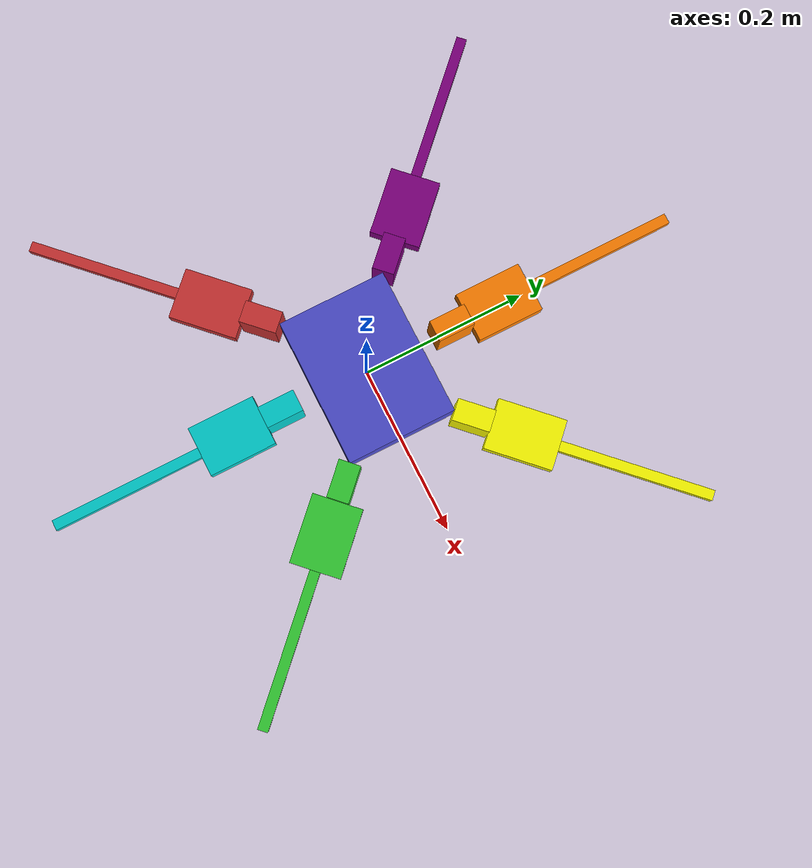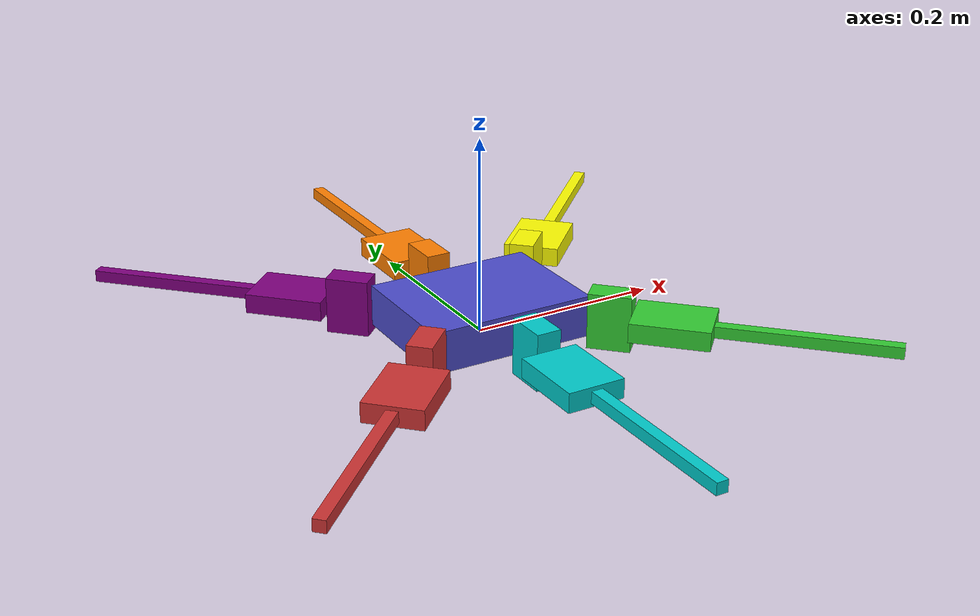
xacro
<?xml version="1.0"?>
<robot name="my_robot" xmlns:xacro="http://www.ros.org/wiki/xacro">

    <!-- Physical properties of the hexapod -->
    <xacro:include filename="my_robot_physical_properties.xacro" />

    <!-- Common properties (colors, inertia macros, etc.) -->
    <xacro:include filename="common_properties.xacro" />

    <!-- Robot structure -->
    <xacro:include filename="mobile_base.xacro" />

    <!-- Gazebo properties, uncomment the line if dont want to use gazebo -->

</robot>

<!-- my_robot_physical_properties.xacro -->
<robot xmlns:xacro="http://ros.org/wiki/xacro">

    <!-- Body Parameters -->
    <xacro:property name="body_start_pos" value="0.1"/>  <!-- desired distance from ground to bottom of body -->
    <xacro:property name="body_length" value="0.175"/>
    <xacro:property name="body_width" value="0.130"/>
    <xacro:property name="body_width_middle" value="0.170"/>
    <xacro:property name="body_height" value="0.043"/>

    <!-- Leg Segment Parameters -->
    <!-- Coxa -->
    <xacro:property name="coxa_length" value="0.0436"/>
    <xacro:property name="coxa_width"  value="0.0254"/>
    <xacro:property name="coxa_height" value="0.0582"/>

    <!-- Femur -->
    <xacro:property name="femur_length" value="0.07994"/>
    <xacro:property name="femur_width"  value="0.059"/>
    <xacro:property name="femur_height" value="0.02"/>

    <!-- Tibia -->
    <xacro:property name="tibia_length" value="0.1787"/>
    <xacro:property name="tibia_width"  value="0.012"/>
    <xacro:property name="tibia_height" value="0.012"/>

    <!-- Joint Limits -->
    <xacro:property name="coxa_joint_limit" value="1.57"/>
    <xacro:property name="femur_joint_limit" value="1.57"/>
    <xacro:property name="tibia_joint_limit" value="1.5"/>

    <!-- Masses -->
    <xacro:property name="base_link_mass" value="0.5"/>
    <xacro:property name="leg_segment_mass" value="0.1167"/>

    <!-- Computed Properties -->
    <xacro:property name="half_body_height" value="${body_height/2}"/>
    <xacro:property name="half_body_width"  value="${body_width/2}"/>
    <xacro:property name="half_coxa_width"  value="${coxa_width/2}"/>

    <!-- Leg mounting position -->
    <xacro:property name="leg_mount_z" value="${body_height/2}"/>

</robot>

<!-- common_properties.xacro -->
<robot xmlns:xacro="http://www.ros.org/wiki/xacro">

    <!-- Visual Properties -->
    <xacro:property name="body_color_rgba" value="0.3 0.3 0.8 1.0"/>

    <!-- Color definitions -->
    <xacro:property name="color_green" value="0.2 0.8 0.2 1.0"/>
    <xacro:property name="color_cyan" value="0.0 0.8 0.8 1.0"/>
    <xacro:property name="color_red" value="0.8 0.2 0.2 1.0"/>
    <xacro:property name="color_orange" value="1.0 0.5 0.0 1.0"/>
    <xacro:property name="color_yellow" value="1.0 1.0 0.0 1.0"/>
    <xacro:property name="color_violet" value="0.5 0.0 0.5 1.0"/>

    <!-- inertia definitions -->
    <xacro:property name="base_link_mass" value="0.5"/>
    <xacro:property name="leg_segment_mass" value="0.1167"/>

    <xacro:macro name="box_inertia" params="m x y z origin_x:=0 origin_y:=0 origin_z:=0">
        <inertial>
        <origin xyz="${origin_x} ${origin_y} ${origin_z}" rpy="0 0 0"/>
        <mass value="${m}"/>
        <inertia  ixx="${m/12 * (y*y + z*z)}" ixy="0" ixz="0"
                    iyy="${m/12 * (x*x + z*z)}" iyz="0"
                    izz="${m/12 * (x*x + y*y)}"/>
        </inertial>
    </xacro:macro>

    <xacro:macro name="base_link_inertial">
        <xacro:box_inertia m="${base_link_mass}"
                        x="${body_length}"
                        y="${body_width}"
                        z="${body_height}"
                        origin_x="0" origin_y="0" origin_z="${body_height/2}"/>
    </xacro:macro>

    <xacro:macro name="leg_segment_inertial" params="x y z">
        <xacro:box_inertia m="${leg_segment_mass}"
                        x="${x}"
                        y="${y}"
                        z="${z}"
                        origin_x="${x/2}" origin_y="0" origin_z="0"/>
    </xacro:macro>

    <!-- collision definitions -->
    <xacro:macro name="box_collision" params="x y z">
      <collision>
        <origin xyz="0 0 0" rpy="0 0 0"/>
        <geometry>
          <box size="${x} ${y} ${z}"/>
        </geometry>
      </collision>
    </xacro:macro>

</robot>

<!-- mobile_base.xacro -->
<!--
  Hexapod robot description for visualization and simulation
  - Base link with 6 legs (front, middle, back pairs)
  - Each leg has 3 segments (coxa, femur, tibia) with revolute joints
-->
<robot name="hexapod" xmlns:xacro="http://ros.org/wiki/xacro">

  <!-- base_footprint empty frame at world z=0 -->
  <link name="base_footprint"/>

  <link name="base_link">
    <visual>
      <geometry>
        <box size="${body_length} ${body_width} ${body_height}"/>
      </geometry>
      <origin xyz="0 0 ${body_height/2}" rpy="0 0 0"/>
      <material name="body_material">
        <color rgba="${body_color_rgba}"/>
      </material>
    </visual>
    <xacro:base_link_inertial/>
    <collision>
      <geometry>
        <box size="${body_length} ${body_width} ${body_height}"/>
      </geometry>
      <origin xyz="0 0 ${body_height/2}" rpy="0 0 0"/>
    </collision>
  </link>

  <joint name="base_footprint_to_base_link" type="fixed">
    <parent link="base_footprint"/>
    <child  link="base_link"/>
    <origin xyz="0 0 0" rpy="0 0 0"/>
  </joint>

  <xacro:macro name="leg" params="prefix parent x y z roll pitch yaw color_rgba">

    <link name="${prefix}_coxa_link">
      <visual>
        <origin xyz="${coxa_length/2} 0 0" rpy="0 0 0"/>
        <geometry>
          <box size="${coxa_length} ${coxa_width} ${coxa_height}"/>
        </geometry>
        <material name="${prefix}_material_coxa"><color rgba="${color_rgba}"/></material>
      </visual>
      <xacro:leg_segment_inertial x="${coxa_length}" y="${coxa_width}" z="${coxa_height}"/>
      <collision>
        <origin xyz="${coxa_length/2} 0 0" rpy="0 0 0"/>
        <geometry>
          <box size="${coxa_length} ${coxa_width} ${coxa_height}"/>
        </geometry>
      </collision>
    </link>

    <joint name="${prefix}_base_to_coxa_joint" type="revolute">
      <parent link="${parent}"/>
      <child  link="${prefix}_coxa_link"/>
      <origin xyz="${x} ${y} ${z}" rpy="${roll} ${pitch} ${yaw}"/>
      <axis  xyz="0 0 1"/>
      <limit lower="${-coxa_joint_limit}" upper="${coxa_joint_limit}" effort="5.0" velocity="2.0"/>
    </joint>

    <link name="${prefix}_femur_link">
      <visual>
        <origin xyz="${femur_length/2} 0 0" rpy="0 0 0"/>
        <geometry>
          <box size="${femur_length} ${femur_width} ${femur_height}"/>
        </geometry>
        <material name="${prefix}_material_femur"><color rgba="${color_rgba}"/></material>
      </visual>
      <xacro:leg_segment_inertial x="${femur_length}" y="${femur_width}" z="${femur_height}"/>
      <collision>
        <origin xyz="${femur_length/2} 0 0" rpy="0 0 0"/>
        <geometry>
          <box size="${femur_length} ${femur_width} ${femur_height}"/>
        </geometry>
      </collision>
    </link>

    <joint name="${prefix}_coxa_to_femur_joint" type="revolute">
      <parent link="${prefix}_coxa_link"/>
      <child  link="${prefix}_femur_link"/>
      <origin xyz="${coxa_length} 0 0" rpy="0 0 0"/>
      <axis  xyz="0 1 0"/>
      <limit lower="${-femur_joint_limit}" upper="${femur_joint_limit}" effort="5.0" velocity="2.0"/>
    </joint>

    <link name="${prefix}_tibia_link">
      <visual>
        <origin xyz="${tibia_length/2} 0 0" rpy="0 0 0"/>
        <geometry>
          <box size="${tibia_length} ${tibia_width} ${tibia_height}"/>
        </geometry>
        <material name="${prefix}_material_tibia"><color rgba="${color_rgba}"/></material>
      </visual>
      <xacro:leg_segment_inertial x="${tibia_length}" y="${tibia_width}" z="${tibia_height}"/>
      <collision>
        <origin xyz="${tibia_length/2} 0 0" rpy="0 0 0"/>
        <geometry>
          <box size="${tibia_length} ${tibia_width} ${tibia_height}"/>
        </geometry>
      </collision>
    </link>

    <joint name="${prefix}_femur_to_tibia_joint" type="revolute">
      <parent link="${prefix}_femur_link"/>
      <child  link="${prefix}_tibia_link"/>
      <origin xyz="${femur_length} 0 0" rpy="0 0 0"/>
      <axis  xyz="0 1 0"/>
      <limit lower="${-tibia_joint_limit}" upper="${tibia_joint_limit}" effort="5.0" velocity="2.0"/>
    </joint>
</xacro:macro>

  <!-- Front legs (45 degrees orientation) -->
  <xacro:leg prefix="leg_fr" parent="base_link"
            x="${body_length/2}"
            y="${-(body_width / 2)}"
            z="${leg_mount_z}"
            roll="0" pitch="0" yaw="-0.7854"
            color_rgba="${color_green}"/>

  <xacro:leg prefix="leg_fl" parent="base_link"
            x="${body_length/2}"
            y="${body_width / 2}"
            z="${leg_mount_z}"
            roll="0" pitch="0" yaw="0.7854"
            color_rgba="${color_yellow}"/>

  <!-- Middle legs (keeping original 90 degree orientation) -->
  <xacro:leg prefix="leg_mr" parent="base_link"
            x="0"
            y="${-(body_width_middle / 2)}"
            z="${leg_mount_z}"
            roll="0" pitch="0" yaw="-1.5708"
            color_rgba="${color_cyan}"/>

  <xacro:leg prefix="leg_ml" parent="base_link"
            x="0"
            y="${body_width_middle / 2}"
            z="${leg_mount_z}"
            roll="0" pitch="0" yaw="1.5708"
            color_rgba="${color_orange}"/>

  <!-- Back legs (135 degrees orientation - pointing backwards) -->
  <xacro:leg prefix="leg_br" parent="base_link"
            x="${-body_length/2}"
            y="${-(body_width / 2)}"
            z="${leg_mount_z}"
            roll="0" pitch="0" yaw="-2.3562"
            color_rgba="${color_red}"/>

  <xacro:leg prefix="leg_bl" parent="base_link"
            x="${-body_length/2}"
            y="${body_width / 2}"
            z="${leg_mount_z}"
            roll="0" pitch="0" yaw="2.3562"
            color_rgba="${color_violet}"/>

</robot>
